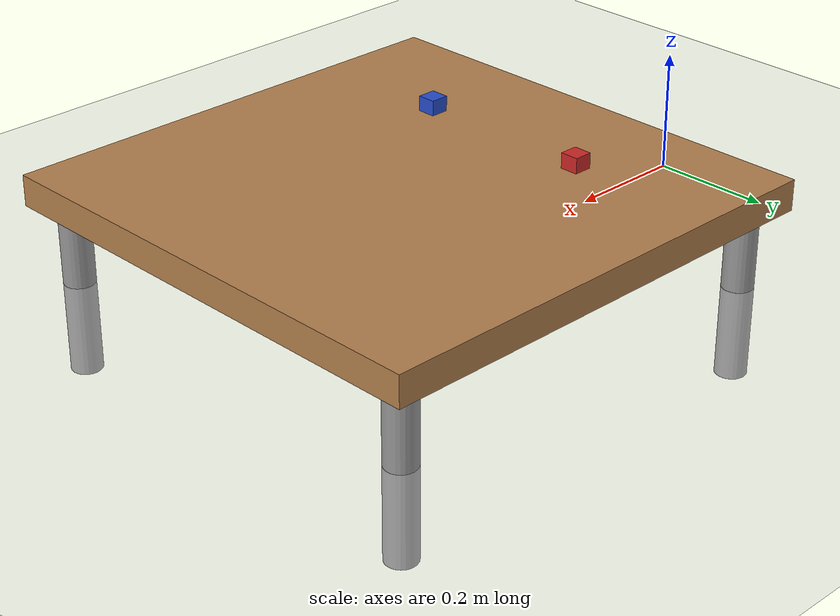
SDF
<sdf version="1.4">
  <world name="pick_and_place_world">
    <!-- Environment -->
    <include>
      <uri>model://sun</uri>
    </include>
    <include>
      <uri>model://ground_plane</uri>
    </include>

    <!-- Physics -->
    <physics type="ode">
      <max_step_size>0.001</max_step_size>
      <real_time_update_rate>1000</real_time_update_rate>
    </physics>

    <!-- Lighting -->
    <scene>
      <ambient>0.8 0.8 0.8 1</ambient>
      <background>0.9 0.9 0.9 1</background>
      <shadows>true</shadows>
    </scene>

    <!-- Work Table with 4 complete legs -->
    <model name="work_table">
      <pose>0.6 0 0 0 0 0</pose>
      <link name="table_link">
        <!-- Table Top -->
        <collision name="table_top_collision">
          <pose>0 0 0.15 0 0 0</pose>
          <geometry>
            <box>
              <size>0.8 0.8 0.05</size>
            </box>
          </geometry>
        </collision>
        <visual name="table_top_visual">
          <pose>0 0 0.15 0 0 0</pose>
          <geometry>
            <box>
              <size>0.8 0.8 0.05</size>
            </box>
          </geometry>
          <material>
            <script>
              <uri>file://media/materials/scripts/gazebo.material</uri>
              <name>Gazebo/Wood</name>
            </script>
          </material>
        </visual>

        <!-- Leg 1: Front Left -->
        <collision name="leg1_collision">
          <pose>0.35 0.35 0 0 0 0</pose>
          <geometry>
            <cylinder>
              <radius>0.025</radius>
              <length>0.3</length>
            </cylinder>
          </geometry>
        </collision>
        <visual name="leg1_visual">
          <pose>0.35 0.35 0 0 0 0</pose>
          <geometry>
            <cylinder>
              <radius>0.025</radius>
              <length>0.3</length>
            </cylinder>
          </geometry>
          <material>
            <script>
              <uri>file://media/materials/scripts/gazebo.material</uri>
              <name>Gazebo/Grey</name>
            </script>
          </material>
        </visual>

        <!-- Leg 2: Front Right -->
        <collision name="leg2_collision">
          <pose>0.35 -0.35 0 0 0 0</pose>
          <geometry>
            <cylinder>
              <radius>0.025</radius>
              <length>0.3</length>
            </cylinder>
          </geometry>
        </collision>
        <visual name="leg2_visual">
          <pose>0.35 -0.35 0 0 0 0</pose>
          <geometry>
            <cylinder>
              <radius>0.025</radius>
              <length>0.3</length>
            </cylinder>
          </geometry>
          <material>
            <script>
              <uri>file://media/materials/scripts/gazebo.material</uri>
              <name>Gazebo/Grey</name>
            </script>
          </material>
        </visual>

        <!-- Leg 3: Back Left -->
        <collision name="leg3_collision">
          <pose>-0.35 0.35 0 0 0 0</pose>
          <geometry>
            <cylinder>
              <radius>0.025</radius>
              <length>0.3</length>
            </cylinder>
          </geometry>
        </collision>
        <visual name="leg3_visual">
          <pose>-0.35 0.35 0 0 0 0</pose>
          <geometry>
            <cylinder>
              <radius>0.025</radius>
              <length>0.3</length>
            </cylinder>
          </geometry>
          <material>
            <script>
              <uri>file://media/materials/scripts/gazebo.material</uri>
              <name>Gazebo/Grey</name>
            </script>
          </material>
        </visual>

        <!-- Leg 4: Back Right -->
        <collision name="leg4_collision">
          <pose>-0.35 -0.35 0 0 0 0</pose>
          <geometry>
            <cylinder>
              <radius>0.025</radius>
              <length>0.3</length>
            </cylinder>
          </geometry>
        </collision>
        <visual name="leg4_visual">
          <pose>-0.35 -0.35 0 0 0 0</pose>
          <geometry>
            <cylinder>
              <radius>0.025</radius>
              <length>0.3</length>
            </cylinder>
          </geometry>
          <material>
            <script>
              <uri>file://media/materials/scripts/gazebo.material</uri>
              <name>Gazebo/Grey</name>
            </script>
          </material>
        </visual>
      </link>
      <static>true</static>
    </model>

    <!-- Target Objects -->
    <model name="red_cube">
      <pose>0.4 0.15 0.175 0 0 0</pose>
      <link name="link">
        <visual name="visual">
          <geometry>
            <box>
              <size>0.03 0.03 0.05</size>
            </box>
          </geometry>
          <material>
            <script>
              <uri>file://media/materials/scripts/gazebo.material</uri>
              <name>Gazebo/Red</name>
            </script>
          </material>
        </visual>
        <collision name="collision">
          <geometry>
            <box>
              <size>0.03 0.03 0.05</size>
            </box>
          </geometry>
        </collision>
      </link>
    </model>

    <model name="blue_cube">
      <pose>0.4 -0.15 0.175 0 0 0</pose>
      <link name="link">
        <visual name="visual">
          <geometry>
            <box>
              <size>0.03 0.03 0.05</size>
            </box>
          </geometry>
          <material>
            <script>
              <uri>file://media/materials/scripts/gazebo.material</uri>
              <name>Gazebo/Blue</name>
            </script>
          </material>
        </visual>
        <collision name="collision">
          <geometry>
            <box>
              <size>0.03 0.03 0.05</size>
            </box>
          </geometry>
        </collision>
      </link>
    </model>
  </world>
</sdf>
